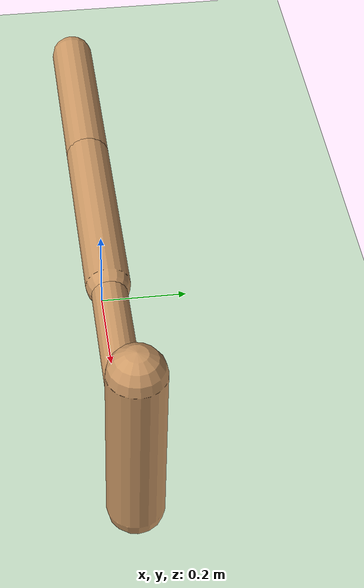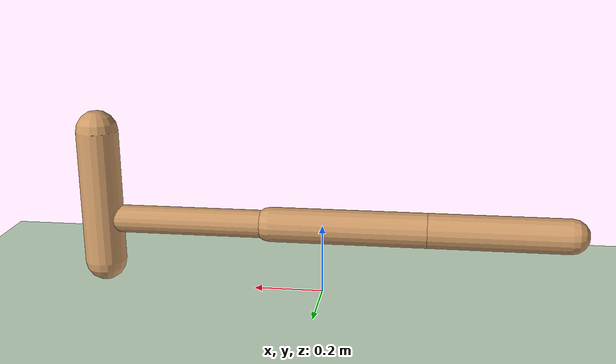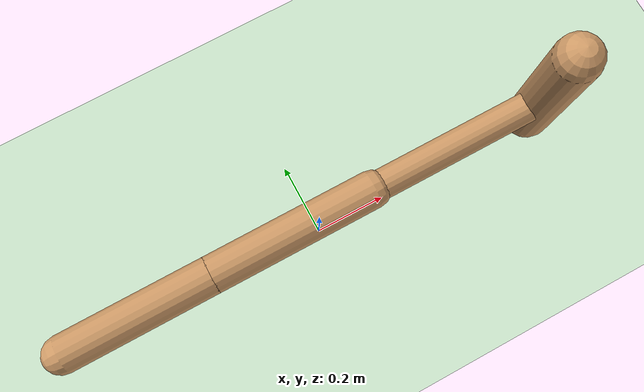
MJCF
<mujoco model="hopper">
  <compiler angle="degree" coordinate="global" inertiafromgeom="true"/>
  <default>
    <joint armature="1" damping="1" limited="true"/>
    <geom conaffinity="1" condim="1" contype="1" margin="0.001" material="geom" rgba="0.8 0.6 .4 1" solimp=".8 .8 .01" solref=".02 1"/>
    <motor ctrllimited="true" ctrlrange="-.4 .4"/>
  </default>
  <option integrator="Euler" timestep="0.01"/>
  <visual>
    <map znear="0.02"/>
  </visual>
  <worldbody>
    <light cutoff="100" diffuse="1 1 1" dir="-0 0 -1.3" directional="true" exponent="1" pos="0 0 1.3" specular=".1 .1 .1"/>
    <geom conaffinity="1" condim="3" name="floor" pos="0 0 0" rgba="0.8 0.9 0.8 1" size="20 20 .125" type="plane" material="MatPlane"/>
    <body name="torso" pos="-0.50 0 0.20">
      <camera name="track" mode="trackcom" pos="0 -3 1" xyaxes="1 0 0 0 0 1"/>
      <joint armature="0" axis="1 0 0" damping="0" limited="false" name="rootx" pos="0 0 0" stiffness="0" type="slide"/>
      <joint armature="0" axis="0 0 1" damping="0" limited="false" name="rootz" pos="0 0 0" ref="1.25" stiffness="0" type="slide"/>
      <joint armature="0" axis="0 1 0" damping="0" limited="false" name="rooty" pos="0 0 1.25" stiffness="0" type="hinge"/>
      <geom friction="0.9" fromto="-0.70 0 0.20 -0.30 0 0.20" name="torso_geom" size="0.05" type="capsule"/>
      <body name="thigh" pos="-0.30 0 0.20">
        <joint axis="0 -1 0" name="thigh_joint" pos="-0.30 0 0.20" range="-150 0" type="hinge"/>
        <geom friction="0.9" fromto="-0.30 0 0.20 0.15 0 0.20" name="thigh_geom" size="0.05" type="capsule"/>
        <body name="leg" pos="0.15 0 0.20">
          <joint axis="0 -1 0" name="leg_joint" pos="0.15 0 0.20" range="-150 0" type="hinge"/>
          <geom friction="0.9" fromto="0.15 0 0.20 0.65 0 0.20" name="leg_geom" size="0.04" type="capsule"/>
          <body name="foot" pos="0.65 0 0.265">
            <joint axis="0 -1 0" name="foot_joint" pos="0.65 0 0.265" range="-45 45" type="hinge"/>
            <geom friction="2.0" fromto="0.65 0 0.07 0.65 0 0.46" name="foot_geom" size="0.06" type="capsule"/>
          </body>
        </body>
      </body>
    </body>
  </worldbody>
  <actuator>
    <motor ctrllimited="true" ctrlrange="-1.0 1.0" gear="200.0" joint="thigh_joint"/>
    <motor ctrllimited="true" ctrlrange="-1.0 1.0" gear="200.0" joint="leg_joint"/>
    <motor ctrllimited="true" ctrlrange="-1.0 1.0" gear="200.0" joint="foot_joint"/>
  </actuator>
    <asset>
        <texture type="skybox" builtin="gradient" rgb1=".4 .5 .6" rgb2="0 0 0"
            width="100" height="100"/>
        <texture builtin="flat" height="1278" mark="cross" markrgb="1 1 1" name="texgeom" random="0.01" rgb1="0.8 0.6 0.4" rgb2="0.8 0.6 0.4" type="cube" width="127"/>
        <texture builtin="checker" height="100" name="texplane" rgb1="0 0 0" rgb2="0.8 0.8 0.8" type="2d" width="100"/>
        <material name="MatPlane" reflectance="0.5" shininess="1" specular="1" texrepeat="60 60" texture="texplane"/>
        <material name="geom" texture="texgeom" texuniform="true"/>
    </asset>
</mujoco>
-            self._orig_q = np.array([0, 0.063930, -1.637727, 0, 0, 0.785769])
